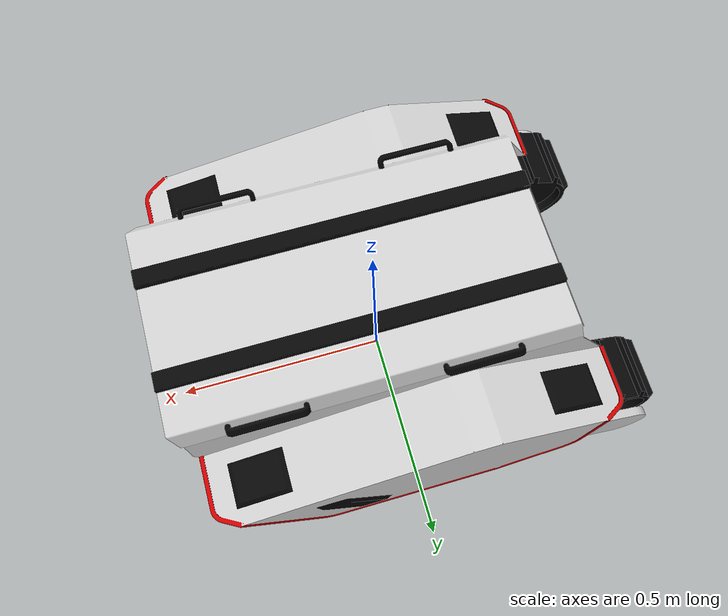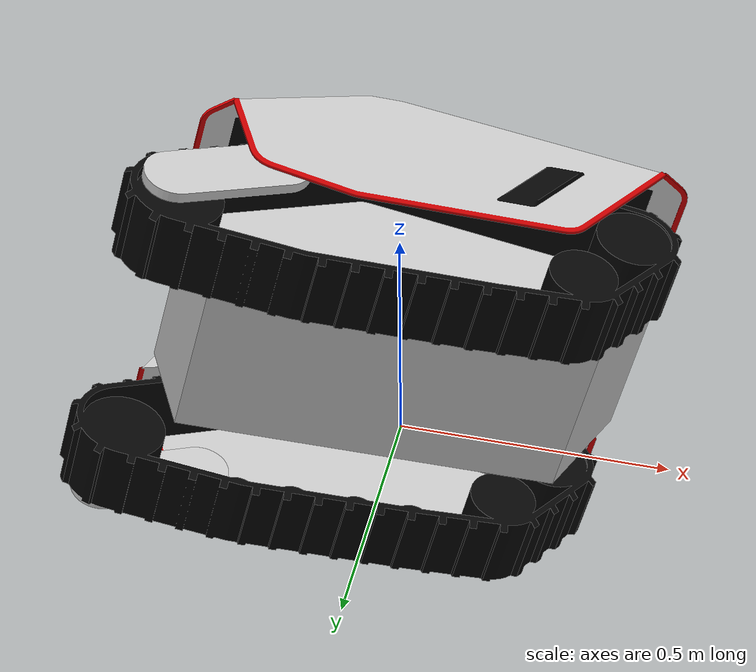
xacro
<?xml version="1.0"?>
<robot name="bunker" xmlns:xacro="http://www.ros.org/wiki/xacro">
  <link name="base_link">
    <visual>
      <geometry>
        <mesh filename="package://bunker_description/meshes/BunkerPro_Tracks.dae"/>
      </geometry>
    </visual>
  </link>

  <joint name="base_link_joint" type="fixed">
    <origin xyz="0 0 0" rpy="0 0 0" />
    <parent link="base_link"/>
    <child link="chassis_link" />
  </joint>

  <link name="chassis_link">
    <visual>
      <geometry>
        <mesh filename="package://bunker_description/meshes/BunkerPro_Body.dae"/>
      </geometry>
    </visual>
    <collision>
      <geometry>
        <mesh filename="package://bunker_description/meshes/BunkerPro_Collision.stl"/>
      </geometry>
    </collision>
  </link>

  <joint name="front_mount_joint" type="fixed">
    <origin xyz="0.484396 0 0.460276" rpy="0 0 0"/>
    <parent link="chassis_link" />
    <child link="front_mount_link" />
  </joint>

  <joint name="rear_mount_joint" type="fixed">
    <origin xyz="-0.379593 0 0.460276" rpy="0 0 0"/>
    <parent link="chassis_link" />
    <child link="rear_mount_link" />
  </joint>

  <link name="front_mount_link" />
  <link name="rear_mount_link" />
</robot>
